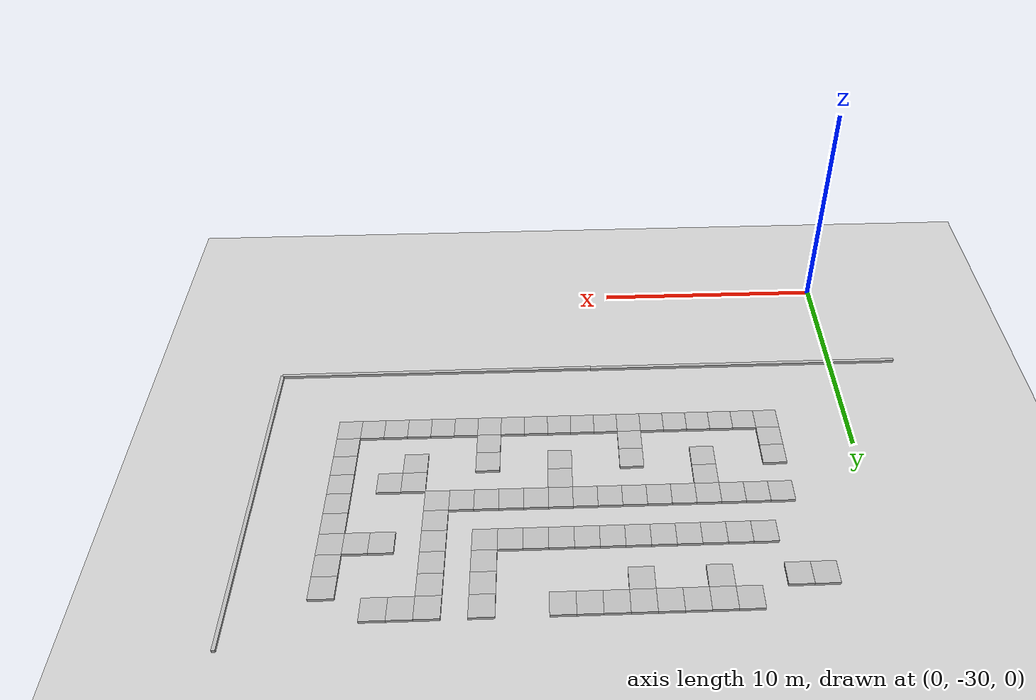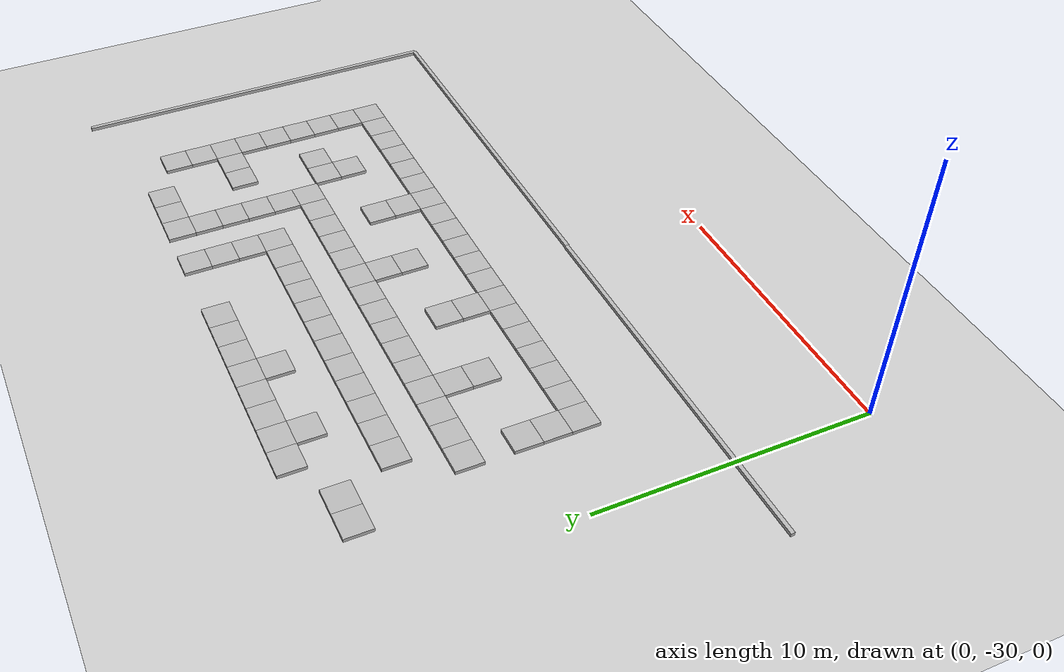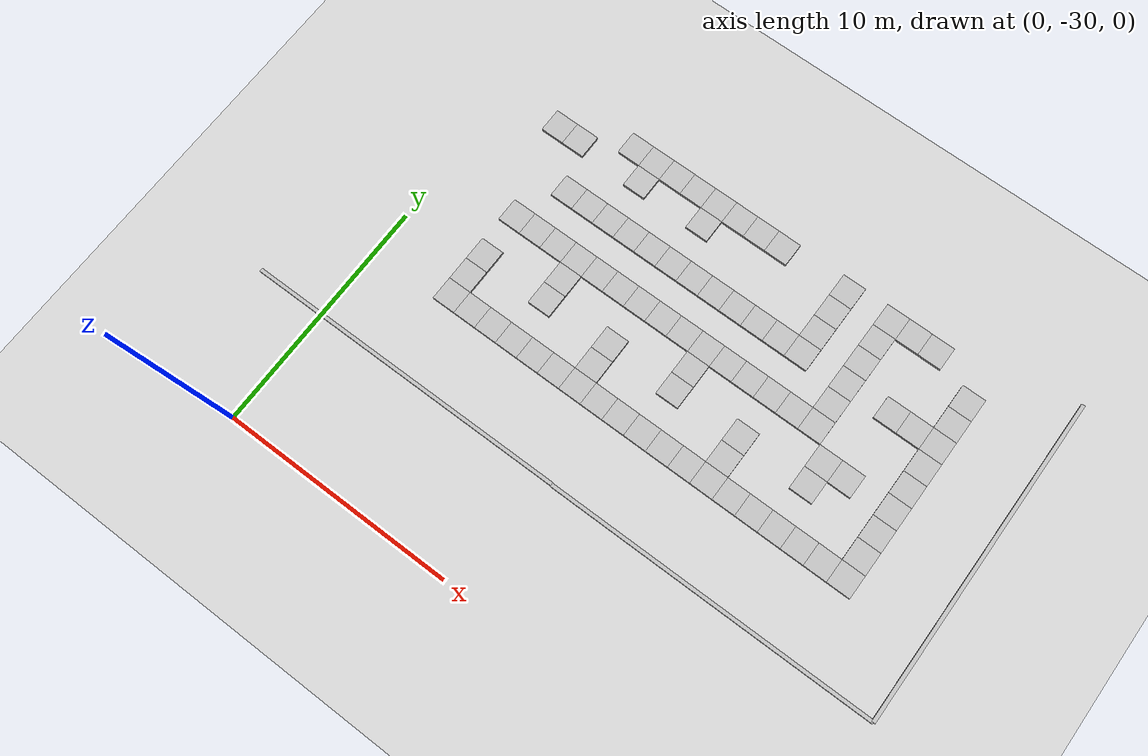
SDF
<sdf version="1.7">
 <world name="default">
  <model name="ground_plane">
   <static>1</static>
   <link name="link">
    <collision name="collision">
     <geometry><plane><normal>0 0 1</normal><size>100 100</size></plane></geometry>
     <surface>
      <contact><collide_bitmask>65535</collide_bitmask></contact>
      <friction><ode><mu>100</mu><mu2>50</mu2></ode></friction>
     </surface>
    </collision>
    <visual name="visual">
     <cast_shadows>0</cast_shadows>
     <geometry><plane><normal>0 0 1</normal><size>100 100</size></plane></geometry>
     <material>
      <script><uri>file://media/materials/scripts/gazebo.material</uri><name>Gazebo/Grey</name></script>
     </material>
    </visual>
   </link>
  </model>
  <model name="concrete_barrier_14m_0">
   <static>1</static>
   <link name="link">
    <collision name="concrete_barrier_14m_01">
     <pose>-0 0 0.3 0 -0 0</pose>
     <geometry><box><size>14 0.15 0.6</size></box></geometry>
    </collision>
    <visual name="concrete_barrier_14m_visual">
     <geometry><mesh><uri>model://concrete_barrier_14m/meshes/concrete_barrier_14m.dae</uri></mesh></geometry>
    </visual>
   </link>
   <pose>25 -18 0 0 -0 0</pose>
  </model>
  <model name="concrete_cube_1m_215">
   <static>1</static>
   <link name="link">
    <collision name="concrete_cube_1m">
     <pose>-0 0 0.3 0 -0 0</pose>
     <geometry><box><size>1 1 0.6</size></box></geometry>
    </collision>
    <visual name="concrete_cube_1m_visual">
     <geometry><mesh><uri>model://concrete_cube_1m/meshes/concrete_cube_1m.dae</uri></mesh></geometry>
    </visual>
   </link>
   <pose>2.5 -13.5 0 0 -0 0</pose>
  </model>
  <model name="concrete_cube_1m_219">
   <static>1</static>
   <link name="link">
    <collision name="concrete_cube_1m">
     <pose>-0 0 0.3 0 -0 0</pose>
     <geometry><box><size>1 1 0.6</size></box></geometry>
    </collision>
    <visual name="concrete_cube_1m_visual">
     <geometry><mesh><uri>model://concrete_cube_1m/meshes/concrete_cube_1m.dae</uri></mesh></geometry>
    </visual>
   </link>
   <pose>12.5 -12.5 0 0 -0 0</pose>
  </model>
  <model name="concrete_cube_1m_220">
   <static>1</static>
   <link name="link">
    <collision name="concrete_cube_1m">
     <pose>-0 0 0.3 0 -0 0</pose>
     <geometry><box><size>1 1 0.6</size></box></geometry>
    </collision>
    <visual name="concrete_cube_1m_visual">
     <geometry><mesh><uri>model://concrete_cube_1m/meshes/concrete_cube_1m.dae</uri></mesh></geometry>
    </visual>
   </link>
   <pose>11.5 -12.5 0 0 -0 0</pose>
  </model>
  <model name="concrete_cube_1m_221">
   <static>1</static>
   <link name="link">
    <collision name="concrete_cube_1m">
     <pose>-0 0 0.3 0 -0 0</pose>
     <geometry><box><size>1 1 0.6</size></box></geometry>
    </collision>
    <visual name="concrete_cube_1m_visual">
     <geometry><mesh><uri>model://concrete_cube_1m/meshes/concrete_cube_1m.dae</uri></mesh></geometry>
    </visual>
   </link>
   <pose>10.5 -12.5 0 0 -0 0</pose>
  </model>
  <model name="concrete_cube_1m_222">
   <static>1</static>
   <link name="link">
    <collision name="concrete_cube_1m">
     <pose>-0 0 0.3 0 -0 0</pose>
     <geometry><box><size>1 1 0.6</size></box></geometry>
    </collision>
    <visual name="concrete_cube_1m_visual">
     <geometry><mesh><uri>model://concrete_cube_1m/meshes/concrete_cube_1m.dae</uri></mesh></geometry>
    </visual>
   </link>
   <pose>9.5 -12.5 0 0 -0 0</pose>
  </model>
  <model name="concrete_cube_1m_223">
   <static>1</static>
   <link name="link">
    <collision name="concrete_cube_1m">
     <pose>-0 0 0.3 0 -0 0</pose>
     <geometry><box><size>1 1 0.6</size></box></geometry>
    </collision>
    <visual name="concrete_cube_1m_visual">
     <geometry><mesh><uri>model://concrete_cube_1m/meshes/concrete_cube_1m.dae</uri></mesh></geometry>
    </visual>
   </link>
   <pose>8.5 -12.5 0 0 -0 0</pose>
  </model>
  <model name="concrete_cube_1m_224">
   <static>1</static>
   <link name="link">
    <collision name="concrete_cube_1m">
     <pose>-0 0 0.3 0 -0 0</pose>
     <geometry><box><size>1 1 0.6</size></box></geometry>
    </collision>
    <visual name="concrete_cube_1m_visual">
     <geometry><mesh><uri>model://concrete_cube_1m/meshes/concrete_cube_1m.dae</uri></mesh></geometry>
    </visual>
   </link>
   <pose>7.5 -12.5 0 0 -0 0</pose>
  </model>
  <model name="concrete_cube_1m_225">
   <static>1</static>
   <link name="link">
    <collision name="concrete_cube_1m">
     <pose>-0 0 0.3 0 -0 0</pose>
     <geometry><box><size>1 1 0.6</size></box></geometry>
    </collision>
    <visual name="concrete_cube_1m_visual">
     <geometry><mesh><uri>model://concrete_cube_1m/meshes/concrete_cube_1m.dae</uri></mesh></geometry>
    </visual>
   </link>
   <pose>6.5 -12.5 0 0 -0 0</pose>
  </model>
  <model name="concrete_cube_1m_226">
   <static>1</static>
   <link name="link">
    <collision name="concrete_cube_1m">
     <pose>-0 0 0.3 0 -0 0</pose>
     <geometry><box><size>1 1 0.6</size></box></geometry>
    </collision>
    <visual name="concrete_cube_1m_visual">
     <geometry><mesh><uri>model://concrete_cube_1m/meshes/concrete_cube_1m.dae</uri></mesh></geometry>
    </visual>
   </link>
   <pose>5.5 -12.5 0 0 -0 0</pose>
  </model>
  <model name="concrete_cube_1m_241">
   <static>1</static>
   <link name="link">
    <collision name="concrete_cube_1m">
     <pose>-0 0 0.3 0 -0 0</pose>
     <geometry><box><size>1 1 0.6</size></box></geometry>
    </collision>
    <visual name="concrete_cube_1m_visual">
     <geometry><mesh><uri>model://concrete_cube_1m/meshes/concrete_cube_1m.dae</uri></mesh></geometry>
    </visual>
   </link>
   <pose>9.5 -13.5 0 0 -0 0</pose>
  </model>
  <model name="concrete_cube_1m_242">
   <static>1</static>
   <link name="link">
    <collision name="concrete_cube_1m">
     <pose>-0 0 0.3 0 -0 0</pose>
     <geometry><box><size>1 1 0.6</size></box></geometry>
    </collision>
    <visual name="concrete_cube_1m_visual">
     <geometry><mesh><uri>model://concrete_cube_1m/meshes/concrete_cube_1m.dae</uri></mesh></geometry>
    </visual>
   </link>
   <pose>6.5 -13.5 0 0 -0 0</pose>
  </model>
  <model name="concrete_cube_1m_243">
   <static>1</static>
   <link name="link">
    <collision name="concrete_cube_1m">
     <pose>-0 0 0.3 0 -0 0</pose>
     <geometry><box><size>1 1 0.6</size></box></geometry>
    </collision>
    <visual name="concrete_cube_1m_visual">
     <geometry><mesh><uri>model://concrete_cube_1m/meshes/concrete_cube_1m.dae</uri></mesh></geometry>
    </visual>
   </link>
   <pose>3.5 -13.5 0 0 -0 0</pose>
  </model>
  <model name="concrete_barrier_14m_4_clone_1">
   <static>1</static>
   <link name="link">
    <collision name="concrete_barrier_14m_01">
     <pose>-0 0 0.3 0 -0 0</pose>
     <geometry><box><size>14 0.15 0.6</size></box></geometry>
    </collision>
    <visual name="concrete_barrier_14m_visual">
     <geometry><mesh><uri>model://concrete_barrier_14m/meshes/concrete_barrier_14m.dae</uri></mesh></geometry>
    </visual>
   </link>
   <pose>18 -25 0 0 0 -1.56953</pose>
  </model>
  <model name="concrete_barrier_14m_4_clone_2">
   <static>1</static>
   <link name="link">
    <collision name="concrete_barrier_14m_01">
     <pose>-0 0 0.3 0 -0 0</pose>
     <geometry><box><size>14 0.15 0.6</size></box></geometry>
    </collision>
    <visual name="concrete_barrier_14m_visual">
     <geometry><mesh><uri>model://concrete_barrier_14m/meshes/concrete_barrier_14m.dae</uri></mesh></geometry>
    </visual>
   </link>
   <pose>4 -25 0 0 0 -1.56953</pose>
  </model>
  <model name="concrete_cube_1m_413">
   <static>1</static>
   <link name="link">
    <collision name="concrete_cube_1m">
     <pose>-0 0 0.3 0 -0 0</pose>
     <geometry><box><size>1 1 0.6</size></box></geometry>
    </collision>
    <visual name="concrete_cube_1m_visual">
     <geometry><mesh><uri>model://concrete_cube_1m/meshes/concrete_cube_1m.dae</uri></mesh></geometry>
    </visual>
   </link>
   <pose>3.5 -17.5 0 0 -0 0</pose>
  </model>
  <model name="concrete_cube_1m_414">
   <static>1</static>
   <link name="link">
    <collision name="concrete_cube_1m">
     <pose>-0 0 0.3 0 -0 0</pose>
     <geometry><box><size>1 1 0.6</size></box></geometry>
    </collision>
    <visual name="concrete_cube_1m_visual">
     <geometry><mesh><uri>model://concrete_cube_1m/meshes/concrete_cube_1m.dae</uri></mesh></geometry>
    </visual>
   </link>
   <pose>4.5 -17.5 0 0 -0 0</pose>
  </model>
  <model name="concrete_cube_1m_415">
   <static>1</static>
   <link name="link">
    <collision name="concrete_cube_1m">
     <pose>-0 0 0.3 0 -0 0</pose>
     <geometry><box><size>1 1 0.6</size></box></geometry>
    </collision>
    <visual name="concrete_cube_1m_visual">
     <geometry><mesh><uri>model://concrete_cube_1m/meshes/concrete_cube_1m.dae</uri></mesh></geometry>
    </visual>
   </link>
   <pose>5.5 -17.5 0 0 -0 0</pose>
  </model>
  <model name="concrete_cube_1m_416">
   <static>1</static>
   <link name="link">
    <collision name="concrete_cube_1m">
     <pose>-0 0 0.3 0 -0 0</pose>
     <geometry><box><size>1 1 0.6</size></box></geometry>
    </collision>
    <visual name="concrete_cube_1m_visual">
     <geometry><mesh><uri>model://concrete_cube_1m/meshes/concrete_cube_1m.dae</uri></mesh></geometry>
    </visual>
   </link>
   <pose>6.5 -17.5 0 0 -0 0</pose>
  </model>
  <model name="concrete_cube_1m_417">
   <static>1</static>
   <link name="link">
    <collision name="concrete_cube_1m">
     <pose>-0 0 0.3 0 -0 0</pose>
     <geometry><box><size>1 1 0.6</size></box></geometry>
    </collision>
    <visual name="concrete_cube_1m_visual">
     <geometry><mesh><uri>model://concrete_cube_1m/meshes/concrete_cube_1m.dae</uri></mesh></geometry>
    </visual>
   </link>
   <pose>7.5 -17.5 0 0 -0 0</pose>
  </model>
  <model name="concrete_cube_1m_418">
   <static>1</static>
   <link name="link">
    <collision name="concrete_cube_1m">
     <pose>-0 0 0.3 0 -0 0</pose>
     <geometry><box><size>1 1 0.6</size></box></geometry>
    </collision>
    <visual name="concrete_cube_1m_visual">
     <geometry><mesh><uri>model://concrete_cube_1m/meshes/concrete_cube_1m.dae</uri></mesh></geometry>
    </visual>
   </link>
   <pose>8.5 -17.5 0 0 -0 0</pose>
  </model>
  <model name="concrete_cube_1m_419">
   <static>1</static>
   <link name="link">
    <collision name="concrete_cube_1m">
     <pose>-0 0 0.3 0 -0 0</pose>
     <geometry><box><size>1 1 0.6</size></box></geometry>
    </collision>
    <visual name="concrete_cube_1m_visual">
     <geometry><mesh><uri>model://concrete_cube_1m/meshes/concrete_cube_1m.dae</uri></mesh></geometry>
    </visual>
   </link>
   <pose>9.5 -17.5 0 0 -0 0</pose>
  </model>
  <model name="concrete_cube_1m_420">
   <static>1</static>
   <link name="link">
    <collision name="concrete_cube_1m">
     <pose>-0 0 0.3 0 -0 0</pose>
     <geometry><box><size>1 1 0.6</size></box></geometry>
    </collision>
    <visual name="concrete_cube_1m_visual">
     <geometry><mesh><uri>model://concrete_cube_1m/meshes/concrete_cube_1m.dae</uri></mesh></geometry>
    </visual>
   </link>
   <pose>10.5 -17.5 0 0 -0 0</pose>
  </model>
  <model name="concrete_cube_1m_421">
   <static>1</static>
   <link name="link">
    <collision name="concrete_cube_1m">
     <pose>-0 0 0.3 0 -0 0</pose>
     <geometry><box><size>1 1 0.6</size></box></geometry>
    </collision>
    <visual name="concrete_cube_1m_visual">
     <geometry><mesh><uri>model://concrete_cube_1m/meshes/concrete_cube_1m.dae</uri></mesh></geometry>
    </visual>
   </link>
   <pose>11.5 -17.5 0 0 -0 0</pose>
  </model>
  <model name="concrete_cube_1m_422">
   <static>1</static>
   <link name="link">
    <collision name="concrete_cube_1m">
     <pose>-0 0 0.3 0 -0 0</pose>
     <geometry><box><size>1 1 0.6</size></box></geometry>
    </collision>
    <visual name="concrete_cube_1m_visual">
     <geometry><mesh><uri>model://concrete_cube_1m/meshes/concrete_cube_1m.dae</uri></mesh></geometry>
    </visual>
   </link>
   <pose>12.5 -17.5 0 0 -0 0</pose>
  </model>
  <model name="concrete_cube_1m_423">
   <static>1</static>
   <link name="link">
    <collision name="concrete_cube_1m">
     <pose>-0 0 0.3 0 -0 0</pose>
     <geometry><box><size>1 1 0.6</size></box></geometry>
    </collision>
    <visual name="concrete_cube_1m_visual">
     <geometry><mesh><uri>model://concrete_cube_1m/meshes/concrete_cube_1m.dae</uri></mesh></geometry>
    </visual>
   </link>
   <pose>13.5 -17.5 0 0 -0 0</pose>
  </model>
  <model name="concrete_cube_1m_424">
   <static>1</static>
   <link name="link">
    <collision name="concrete_cube_1m">
     <pose>-0 0 0.3 0 -0 0</pose>
     <geometry><box><size>1 1 0.6</size></box></geometry>
    </collision>
    <visual name="concrete_cube_1m_visual">
     <geometry><mesh><uri>model://concrete_cube_1m/meshes/concrete_cube_1m.dae</uri></mesh></geometry>
    </visual>
   </link>
   <pose>14.5 -17.5 0 0 -0 0</pose>
  </model>
  <model name="concrete_cube_1m_425">
   <static>1</static>
   <link name="link">
    <collision name="concrete_cube_1m">
     <pose>-0 0 0.3 0 -0 0</pose>
     <geometry><box><size>1 1 0.6</size></box></geometry>
    </collision>
    <visual name="concrete_cube_1m_visual">
     <geometry><mesh><uri>model://concrete_cube_1m/meshes/concrete_cube_1m.dae</uri></mesh></geometry>
    </visual>
   </link>
   <pose>15.5 -17.5 0 0 -0 0</pose>
  </model>
  <model name="concrete_cube_1m_426">
   <static>1</static>
   <link name="link">
    <collision name="concrete_cube_1m">
     <pose>-0 0 0.3 0 -0 0</pose>
     <geometry><box><size>1 1 0.6</size></box></geometry>
    </collision>
    <visual name="concrete_cube_1m_visual">
     <geometry><mesh><uri>model://concrete_cube_1m/meshes/concrete_cube_1m.dae</uri></mesh></geometry>
    </visual>
   </link>
   <pose>16.5 -17.5 0 0 -0 0</pose>
  </model>
  <model name="concrete_cube_1m_427">
   <static>1</static>
   <link name="link">
    <collision name="concrete_cube_1m">
     <pose>-0 0 0.3 0 -0 0</pose>
     <geometry><box><size>1 1 0.6</size></box></geometry>
    </collision>
    <visual name="concrete_cube_1m_visual">
     <geometry><mesh><uri>model://concrete_cube_1m/meshes/concrete_cube_1m.dae</uri></mesh></geometry>
    </visual>
   </link>
   <pose>17.5 -17.5 0 0 -0 0</pose>
  </model>
  <model name="concrete_cube_1m_428">
   <static>1</static>
   <link name="link">
    <collision name="concrete_cube_1m">
     <pose>-0 0 0.3 0 -0 0</pose>
     <geometry><box><size>1 1 0.6</size></box></geometry>
    </collision>
    <visual name="concrete_cube_1m_visual">
     <geometry><mesh><uri>model://concrete_cube_1m/meshes/concrete_cube_1m.dae</uri></mesh></geometry>
    </visual>
   </link>
   <pose>18.5 -18.5 0 0 -0 0</pose>
  </model>
  <model name="concrete_cube_1m_429">
   <static>1</static>
   <link name="link">
    <collision name="concrete_cube_1m">
     <pose>-0 0 0.3 0 -0 0</pose>
     <geometry><box><size>1 1 0.6</size></box></geometry>
    </collision>
    <visual name="concrete_cube_1m_visual">
     <geometry><mesh><uri>model://concrete_cube_1m/meshes/concrete_cube_1m.dae</uri></mesh></geometry>
    </visual>
   </link>
   <pose>17.5 -16.5 0 0 -0 0</pose>
  </model>
  <model name="concrete_cube_1m_430">
   <static>1</static>
   <link name="link">
    <collision name="concrete_cube_1m">
     <pose>-0 0 0.3 0 -0 0</pose>
     <geometry><box><size>1 1 0.6</size></box></geometry>
    </collision>
    <visual name="concrete_cube_1m_visual">
     <geometry><mesh><uri>model://concrete_cube_1m/meshes/concrete_cube_1m.dae</uri></mesh></geometry>
    </visual>
   </link>
   <pose>17.5 -15.5 0 0 -0 0</pose>
  </model>
  <model name="concrete_cube_1m_431">
   <static>1</static>
   <link name="link">
    <collision name="concrete_cube_1m">
     <pose>-0 0 0.3 0 -0 0</pose>
     <geometry><box><size>1 1 0.6</size></box></geometry>
    </collision>
    <visual name="concrete_cube_1m_visual">
     <geometry><mesh><uri>model://concrete_cube_1m/meshes/concrete_cube_1m.dae</uri></mesh></geometry>
    </visual>
   </link>
   <pose>17.5 -14.5 0 0 -0 0</pose>
  </model>
  <model name="concrete_cube_1m_432">
   <static>1</static>
   <link name="link">
    <collision name="concrete_cube_1m">
     <pose>-0 0 0.3 0 -0 0</pose>
     <geometry><box><size>1 1 0.6</size></box></geometry>
    </collision>
    <visual name="concrete_cube_1m_visual">
     <geometry><mesh><uri>model://concrete_cube_1m/meshes/concrete_cube_1m.dae</uri></mesh></geometry>
    </visual>
   </link>
   <pose>17.5 -13.5 0 0 -0 0</pose>
  </model>
  <model name="concrete_cube_1m_433">
   <static>1</static>
   <link name="link">
    <collision name="concrete_cube_1m">
     <pose>-0 0 0.3 0 -0 0</pose>
     <geometry><box><size>1 1 0.6</size></box></geometry>
    </collision>
    <visual name="concrete_cube_1m_visual">
     <geometry><mesh><uri>model://concrete_cube_1m/meshes/concrete_cube_1m.dae</uri></mesh></geometry>
    </visual>
   </link>
   <pose>17.5 -12.5 0 0 -0 0</pose>
  </model>
  <model name="concrete_cube_1m_444">
   <static>1</static>
   <link name="link">
    <collision name="concrete_cube_1m">
     <pose>-0 0 0.3 0 -0 0</pose>
     <geometry><box><size>1 1 0.6</size></box></geometry>
    </collision>
    <visual name="concrete_cube_1m_visual">
     <geometry><mesh><uri>model://concrete_cube_1m/meshes/concrete_cube_1m.dae</uri></mesh></geometry>
    </visual>
   </link>
   <pose>4.5 -15.5 0 0 -0 0</pose>
  </model>
  <model name="concrete_cube_1m_445">
   <static>1</static>
   <link name="link">
    <collision name="concrete_cube_1m">
     <pose>-0 0 0.3 0 -0 0</pose>
     <geometry><box><size>1 1 0.6</size></box></geometry>
    </collision>
    <visual name="concrete_cube_1m_visual">
     <geometry><mesh><uri>model://concrete_cube_1m/meshes/concrete_cube_1m.dae</uri></mesh></geometry>
    </visual>
   </link>
   <pose>5.5 -15.5 0 0 -0 0</pose>
  </model>
  <model name="concrete_cube_1m_446">
   <static>1</static>
   <link name="link">
    <collision name="concrete_cube_1m">
     <pose>-0 0 0.3 0 -0 0</pose>
     <geometry><box><size>1 1 0.6</size></box></geometry>
    </collision>
    <visual name="concrete_cube_1m_visual">
     <geometry><mesh><uri>model://concrete_cube_1m/meshes/concrete_cube_1m.dae</uri></mesh></geometry>
    </visual>
   </link>
   <pose>6.5 -15.5 0 0 -0 0</pose>
  </model>
  <model name="concrete_cube_1m_447">
   <static>1</static>
   <link name="link">
    <collision name="concrete_cube_1m">
     <pose>-0 0 0.3 0 -0 0</pose>
     <geometry><box><size>1 1 0.6</size></box></geometry>
    </collision>
    <visual name="concrete_cube_1m_visual">
     <geometry><mesh><uri>model://concrete_cube_1m/meshes/concrete_cube_1m.dae</uri></mesh></geometry>
    </visual>
   </link>
   <pose>7.5 -15.5 0 0 -0 0</pose>
  </model>
  <model name="concrete_cube_1m_448">
   <static>1</static>
   <link name="link">
    <collision name="concrete_cube_1m">
     <pose>-0 0 0.3 0 -0 0</pose>
     <geometry><box><size>1 1 0.6</size></box></geometry>
    </collision>
    <visual name="concrete_cube_1m_visual">
     <geometry><mesh><uri>model://concrete_cube_1m/meshes/concrete_cube_1m.dae</uri></mesh></geometry>
    </visual>
   </link>
   <pose>8.5 -15.5 0 0 -0 0</pose>
  </model>
  <model name="concrete_cube_1m_449">
   <static>1</static>
   <link name="link">
    <collision name="concrete_cube_1m">
     <pose>-0 0 0.3 0 -0 0</pose>
     <geometry><box><size>1 1 0.6</size></box></geometry>
    </collision>
    <visual name="concrete_cube_1m_visual">
     <geometry><mesh><uri>model://concrete_cube_1m/meshes/concrete_cube_1m.dae</uri></mesh></geometry>
    </visual>
   </link>
   <pose>9.5 -15.5 0 0 -0 0</pose>
  </model>
  <model name="concrete_cube_1m_450">
   <static>1</static>
   <link name="link">
    <collision name="concrete_cube_1m">
     <pose>-0 0 0.3 0 -0 0</pose>
     <geometry><box><size>1 1 0.6</size></box></geometry>
    </collision>
    <visual name="concrete_cube_1m_visual">
     <geometry><mesh><uri>model://concrete_cube_1m/meshes/concrete_cube_1m.dae</uri></mesh></geometry>
    </visual>
   </link>
   <pose>10.5 -15.5 0 0 -0 0</pose>
  </model>
  <model name="concrete_cube_1m_451">
   <static>1</static>
   <link name="link">
    <collision name="concrete_cube_1m">
     <pose>-0 0 0.3 0 -0 0</pose>
     <geometry><box><size>1 1 0.6</size></box></geometry>
    </collision>
    <visual name="concrete_cube_1m_visual">
     <geometry><mesh><uri>model://concrete_cube_1m/meshes/concrete_cube_1m.dae</uri></mesh></geometry>
    </visual>
   </link>
   <pose>11.5 -15.5 0 0 -0 0</pose>
  </model>
  <model name="concrete_cube_1m_452">
   <static>1</static>
   <link name="link">
    <collision name="concrete_cube_1m">
     <pose>-0 0 0.3 0 -0 0</pose>
     <geometry><box><size>1 1 0.6</size></box></geometry>
    </collision>
    <visual name="concrete_cube_1m_visual">
     <geometry><mesh><uri>model://concrete_cube_1m/meshes/concrete_cube_1m.dae</uri></mesh></geometry>
    </visual>
   </link>
   <pose>12.5 -15.5 0 0 -0 0</pose>
  </model>
  <model name="concrete_cube_1m_453">
   <static>1</static>
   <link name="link">
    <collision name="concrete_cube_1m">
     <pose>-0 0 0.3 0 -0 0</pose>
     <geometry><box><size>1 1 0.6</size></box></geometry>
    </collision>
    <visual name="concrete_cube_1m_visual">
     <geometry><mesh><uri>model://concrete_cube_1m/meshes/concrete_cube_1m.dae</uri></mesh></geometry>
    </visual>
   </link>
   <pose>13.5 -15.5 0 0 -0 0</pose>
  </model>
  <model name="concrete_cube_1m_454">
   <static>1</static>
   <link name="link">
    <collision name="concrete_cube_1m">
     <pose>-0 0 0.3 0 -0 0</pose>
     <geometry><box><size>1 1 0.6</size></box></geometry>
    </collision>
    <visual name="concrete_cube_1m_visual">
     <geometry><mesh><uri>model://concrete_cube_1m/meshes/concrete_cube_1m.dae</uri></mesh></geometry>
    </visual>
   </link>
   <pose>14.5 -15.5 0 0 -0 0</pose>
  </model>
  <model name="concrete_cube_1m_237">
   <static>1</static>
   <link name="link">
    <collision name="concrete_cube_1m">
     <pose>-0 0 0.3 0 -0 0</pose>
     <geometry><box><size>1 1 0.6</size></box></geometry>
    </collision>
    <visual name="concrete_cube_1m_visual">
     <geometry><mesh><uri>model://concrete_cube_1m/meshes/concrete_cube_1m.dae</uri></mesh></geometry>
    </visual>
   </link>
   <pose>15.5 -15.5 0 0 -0 0</pose>
  </model>
  <model name="concrete_cube_1m_455">
   <static>1</static>
   <link name="link">
    <collision name="concrete_cube_1m">
     <pose>-0 0 0.3 0 -0 0</pose>
     <geometry><box><size>1 1 0.6</size></box></geometry>
    </collision>
    <visual name="concrete_cube_1m_visual">
     <geometry><mesh><uri>model://concrete_cube_1m/meshes/concrete_cube_1m.dae</uri></mesh></geometry>
    </visual>
   </link>
   <pose>15.5 -13.5 0 0 -0 0</pose>
  </model>
  <model name="concrete_cube_1m_456">
   <static>1</static>
   <link name="link">
    <collision name="concrete_cube_1m">
     <pose>-0 0 0.3 0 -0 0</pose>
     <geometry><box><size>1 1 0.6</size></box></geometry>
    </collision>
    <visual name="concrete_cube_1m_visual">
     <geometry><mesh><uri>model://concrete_cube_1m/meshes/concrete_cube_1m.dae</uri></mesh></geometry>
    </visual>
   </link>
   <pose>15.5 -14.5 0 0 -0 0</pose>
  </model>
  <model name="concrete_cube_1m_457">
   <static>1</static>
   <link name="link">
    <collision name="concrete_cube_1m">
     <pose>-0 0 0.3 0 -0 0</pose>
     <geometry><box><size>1 1 0.6</size></box></geometry>
    </collision>
    <visual name="concrete_cube_1m_visual">
     <geometry><mesh><uri>model://concrete_cube_1m/meshes/concrete_cube_1m.dae</uri></mesh></geometry>
    </visual>
   </link>
   <pose>15.5 -12.5 0 0 -0 0</pose>
  </model>
  <model name="concrete_cube_1m_467">
   <static>1</static>
   <link name="link">
    <collision name="concrete_cube_1m">
     <pose>-0 0 0.3 0 -0 0</pose>
     <geometry><box><size>1 1 0.6</size></box></geometry>
    </collision>
    <visual name="concrete_cube_1m_visual">
     <geometry><mesh><uri>model://concrete_cube_1m/meshes/concrete_cube_1m.dae</uri></mesh></geometry>
    </visual>
   </link>
   <pose>15.5 -19.5 0 0 -0 0</pose>
  </model>
  <model name="concrete_cube_1m_468">
   <static>1</static>
   <link name="link">
    <collision name="concrete_cube_1m">
     <pose>-0 0 0.3 0 -0 0</pose>
     <geometry><box><size>1 1 0.6</size></box></geometry>
    </collision>
    <visual name="concrete_cube_1m_visual">
     <geometry><mesh><uri>model://concrete_cube_1m/meshes/concrete_cube_1m.dae</uri></mesh></geometry>
    </visual>
   </link>
   <pose>12.5 -18.5 0 0 -0 0</pose>
  </model>
  <model name="concrete_cube_1m_469">
   <static>1</static>
   <link name="link">
    <collision name="concrete_cube_1m">
     <pose>-0 0 0.3 0 -0 0</pose>
     <geometry><box><size>1 1 0.6</size></box></geometry>
    </collision>
    <visual name="concrete_cube_1m_visual">
     <geometry><mesh><uri>model://concrete_cube_1m/meshes/concrete_cube_1m.dae</uri></mesh></geometry>
    </visual>
   </link>
   <pose>9.5 -19.5 0 0 -0 0</pose>
  </model>
  <model name="concrete_cube_1m_470">
   <static>1</static>
   <link name="link">
    <collision name="concrete_cube_1m">
     <pose>-0 0 0.3 0 -0 0</pose>
     <geometry><box><size>1 1 0.6</size></box></geometry>
    </collision>
    <visual name="concrete_cube_1m_visual">
     <geometry><mesh><uri>model://concrete_cube_1m/meshes/concrete_cube_1m.dae</uri></mesh></geometry>
    </visual>
   </link>
   <pose>6.5 -18.5 0 0 -0 0</pose>
  </model>
  <model name="concrete_cube_1m_471">
   <static>1</static>
   <link name="link">
    <collision name="concrete_cube_1m">
     <pose>-0 0 0.3 0 -0 0</pose>
     <geometry><box><size>1 1 0.6</size></box></geometry>
    </collision>
    <visual name="concrete_cube_1m_visual">
     <geometry><mesh><uri>model://concrete_cube_1m/meshes/concrete_cube_1m.dae</uri></mesh></geometry>
    </visual>
   </link>
   <pose>3.5 -19.5 0 0 -0 0</pose>
  </model>
  <model name="concrete_cube_1m_472">
   <static>1</static>
   <link name="link">
    <collision name="concrete_cube_1m">
     <pose>-0 0 0.3 0 -0 0</pose>
     <geometry><box><size>1 1 0.6</size></box></geometry>
    </collision>
    <visual name="concrete_cube_1m_visual">
     <geometry><mesh><uri>model://concrete_cube_1m/meshes/concrete_cube_1m.dae</uri></mesh></geometry>
    </visual>
   </link>
   <pose>19.5 -15.5 0 0 -0 0</pose>
  </model>
  <model name="concrete_cube_1m_473">
   <static>1</static>
   <link name="link">
    <collision name="concrete_cube_1m">
     <pose>-0 0 0.3 0 -0 0</pose>
     <geometry><box><size>1 1 0.6</size></box></geometry>
    </collision>
    <visual name="concrete_cube_1m_visual">
     <geometry><mesh><uri>model://concrete_cube_1m/meshes/concrete_cube_1m.dae</uri></mesh></geometry>
    </visual>
   </link>
   <pose>18.5 -12.5 0 0 -0 0</pose>
  </model>
  <model name="concrete_cube_1m_690">
   <static>1</static>
   <link name="link">
    <collision name="concrete_cube_1m">
     <pose>-0 0 0.3 0 -0 0</pose>
     <geometry><box><size>1 1 0.6</size></box></geometry>
    </collision>
    <visual name="concrete_cube_1m_visual">
     <geometry><mesh><uri>model://concrete_cube_1m/meshes/concrete_cube_1m.dae</uri></mesh></geometry>
    </visual>
   </link>
   <pose>19.5 -12.5 0 0 -0 0</pose>
  </model>
  <model name="concrete_cube_1m_691">
   <static>1</static>
   <link name="link">
    <collision name="concrete_cube_1m">
     <pose>-0 0 0.3 0 -0 0</pose>
     <geometry><box><size>1 1 0.6</size></box></geometry>
    </collision>
    <visual name="concrete_cube_1m_visual">
     <geometry><mesh><uri>model://concrete_cube_1m/meshes/concrete_cube_1m.dae</uri></mesh></geometry>
    </visual>
   </link>
   <pose>20.5 -15.5 0 0 -0 0</pose>
  </model>
  <model name="concrete_cube_1m_692">
   <static>1</static>
   <link name="link">
    <collision name="concrete_cube_1m">
     <pose>-0 0 0.3 0 -0 0</pose>
     <geometry><box><size>1 1 0.6</size></box></geometry>
    </collision>
    <visual name="concrete_cube_1m_visual">
     <geometry><mesh><uri>model://concrete_cube_1m/meshes/concrete_cube_1m.dae</uri></mesh></geometry>
    </visual>
   </link>
   <pose>19.5 -18.5 0 0 -0 0</pose>
  </model>
  <model name="concrete_cube_1m_704">
   <static>1</static>
   <link name="link">
    <collision name="concrete_cube_1m">
     <pose>-0 0 0.3 0 -0 0</pose>
     <geometry><box><size>1 1 0.6</size></box></geometry>
    </collision>
    <visual name="concrete_cube_1m_visual">
     <geometry><mesh><uri>model://concrete_cube_1m/meshes/concrete_cube_1m.dae</uri></mesh></geometry>
    </visual>
   </link>
   <pose>21.5 -13.5 0 0 -0 0</pose>
  </model>
  <model name="concrete_cube_1m_705">
   <static>1</static>
   <link name="link">
    <collision name="concrete_cube_1m">
     <pose>-0 0 0.3 0 -0 0</pose>
     <geometry><box><size>1 1 0.6</size></box></geometry>
    </collision>
    <visual name="concrete_cube_1m_visual">
     <geometry><mesh><uri>model://concrete_cube_1m/meshes/concrete_cube_1m.dae</uri></mesh></geometry>
    </visual>
   </link>
   <pose>21.5 -14.5 0 0 -0 0</pose>
  </model>
  <model name="concrete_cube_1m_706">
   <static>1</static>
   <link name="link">
    <collision name="concrete_cube_1m">
     <pose>-0 0 0.3 0 -0 0</pose>
     <geometry><box><size>1 1 0.6</size></box></geometry>
    </collision>
    <visual name="concrete_cube_1m_visual">
     <geometry><mesh><uri>model://concrete_cube_1m/meshes/concrete_cube_1m.dae</uri></mesh></geometry>
    </visual>
   </link>
   <pose>21.5 -15.5 0 0 -0 0</pose>
  </model>
  <model name="concrete_cube_1m_707">
   <static>1</static>
   <link name="link">
    <collision name="concrete_cube_1m">
     <pose>-0 0 0.3 0 -0 0</pose>
     <geometry><box><size>1 1 0.6</size></box></geometry>
    </collision>
    <visual name="concrete_cube_1m_visual">
     <geometry><mesh><uri>model://concrete_cube_1m/meshes/concrete_cube_1m.dae</uri></mesh></geometry>
    </visual>
   </link>
   <pose>21.5 -16.5 0 0 -0 0</pose>
  </model>
  <model name="concrete_cube_1m_708">
   <static>1</static>
   <link name="link">
    <collision name="concrete_cube_1m">
     <pose>-0 0 0.3 0 -0 0</pose>
     <geometry><box><size>1 1 0.6</size></box></geometry>
    </collision>
    <visual name="concrete_cube_1m_visual">
     <geometry><mesh><uri>model://concrete_cube_1m/meshes/concrete_cube_1m.dae</uri></mesh></geometry>
    </visual>
   </link>
   <pose>21.5 -17.5 0 0 -0 0</pose>
  </model>
  <model name="concrete_cube_1m_709">
   <static>1</static>
   <link name="link">
    <collision name="concrete_cube_1m">
     <pose>-0 0 0.3 0 -0 0</pose>
     <geometry><box><size>1 1 0.6</size></box></geometry>
    </collision>
    <visual name="concrete_cube_1m_visual">
     <geometry><mesh><uri>model://concrete_cube_1m/meshes/concrete_cube_1m.dae</uri></mesh></geometry>
    </visual>
   </link>
   <pose>21.5 -18.5 0 0 -0 0</pose>
  </model>
  <model name="concrete_cube_1m_710">
   <static>1</static>
   <link name="link">
    <collision name="concrete_cube_1m">
     <pose>-0 0 0.3 0 -0 0</pose>
     <geometry><box><size>1 1 0.6</size></box></geometry>
    </collision>
    <visual name="concrete_cube_1m_visual">
     <geometry><mesh><uri>model://concrete_cube_1m/meshes/concrete_cube_1m.dae</uri></mesh></geometry>
    </visual>
   </link>
   <pose>15.5 -20.5 0 0 -0 0</pose>
  </model>
  <model name="concrete_cube_1m_711">
   <static>1</static>
   <link name="link">
    <collision name="concrete_cube_1m">
     <pose>-0 0 0.3 0 -0 0</pose>
     <geometry><box><size>1 1 0.6</size></box></geometry>
    </collision>
    <visual name="concrete_cube_1m_visual">
     <geometry><mesh><uri>model://concrete_cube_1m/meshes/concrete_cube_1m.dae</uri></mesh></geometry>
    </visual>
   </link>
   <pose>15.5 -21.5 0 0 -0 0</pose>
  </model>
  <model name="concrete_cube_1m_712">
   <static>1</static>
   <link name="link">
    <collision name="concrete_cube_1m">
     <pose>-0 0 0.3 0 -0 0</pose>
     <geometry><box><size>1 1 0.6</size></box></geometry>
    </collision>
    <visual name="concrete_cube_1m_visual">
     <geometry><mesh><uri>model://concrete_cube_1m/meshes/concrete_cube_1m.dae</uri></mesh></geometry>
    </visual>
   </link>
   <pose>16.5 -21.5 0 0 -0 0</pose>
  </model>
  <model name="concrete_cube_1m_713">
   <static>1</static>
   <link name="link">
    <collision name="concrete_cube_1m">
     <pose>-0 0 0.3 0 -0 0</pose>
     <geometry><box><size>1 1 0.6</size></box></geometry>
    </collision>
    <visual name="concrete_cube_1m_visual">
     <geometry><mesh><uri>model://concrete_cube_1m/meshes/concrete_cube_1m.dae</uri></mesh></geometry>
    </visual>
   </link>
   <pose>17.5 -21.5 0 0 -0 0</pose>
  </model>
  <model name="concrete_cube_1m_714">
   <static>1</static>
   <link name="link">
    <collision name="concrete_cube_1m">
     <pose>-0 0 0.3 0 -0 0</pose>
     <geometry><box><size>1 1 0.6</size></box></geometry>
    </collision>
    <visual name="concrete_cube_1m_visual">
     <geometry><mesh><uri>model://concrete_cube_1m/meshes/concrete_cube_1m.dae</uri></mesh></geometry>
    </visual>
   </link>
   <pose>18.5 -21.5 0 0 -0 0</pose>
  </model>
  <model name="concrete_cube_1m_715">
   <static>1</static>
   <link name="link">
    <collision name="concrete_cube_1m">
     <pose>-0 0 0.3 0 -0 0</pose>
     <geometry><box><size>1 1 0.6</size></box></geometry>
    </collision>
    <visual name="concrete_cube_1m_visual">
     <geometry><mesh><uri>model://concrete_cube_1m/meshes/concrete_cube_1m.dae</uri></mesh></geometry>
    </visual>
   </link>
   <pose>19.5 -21.5 0 0 -0 0</pose>
  </model>
  <model name="concrete_cube_1m_716">
   <static>1</static>
   <link name="link">
    <collision name="concrete_cube_1m">
     <pose>-0 0 0.3 0 -0 0</pose>
     <geometry><box><size>1 1 0.6</size></box></geometry>
    </collision>
    <visual name="concrete_cube_1m_visual">
     <geometry><mesh><uri>model://concrete_cube_1m/meshes/concrete_cube_1m.dae</uri></mesh></geometry>
    </visual>
   </link>
   <pose>20.5 -21.5 0 0 -0 0</pose>
  </model>
  <model name="concrete_cube_1m_717">
   <static>1</static>
   <link name="link">
    <collision name="concrete_cube_1m">
     <pose>-0 0 0.3 0 -0 0</pose>
     <geometry><box><size>1 1 0.6</size></box></geometry>
    </collision>
    <visual name="concrete_cube_1m_visual">
     <geometry><mesh><uri>model://concrete_cube_1m/meshes/concrete_cube_1m.dae</uri></mesh></geometry>
    </visual>
   </link>
   <pose>21.5 -20.5 0 0 -0 0</pose>
  </model>
  <model name="concrete_cube_1m_718">
   <static>1</static>
   <link name="link">
    <collision name="concrete_cube_1m">
     <pose>-0 0 0.3 0 -0 0</pose>
     <geometry><box><size>1 1 0.6</size></box></geometry>
    </collision>
    <visual name="concrete_cube_1m_visual">
     <geometry><mesh><uri>model://concrete_cube_1m/meshes/concrete_cube_1m.dae</uri></mesh></geometry>
    </visual>
   </link>
   <pose>21.5 -21.5 0 0 -0 0</pose>
  </model>
  <model name="concrete_cube_1m_719">
   <static>1</static>
   <link name="link">
    <collision name="concrete_cube_1m">
     <pose>-0 0 0.3 0 -0 0</pose>
     <geometry><box><size>1 1 0.6</size></box></geometry>
    </collision>
    <visual name="concrete_cube_1m_visual">
     <geometry><mesh><uri>model://concrete_cube_1m/meshes/concrete_cube_1m.dae</uri></mesh></geometry>
    </visual>
   </link>
   <pose>21.5 -19.5 0 0 -0 0</pose>
  </model>
  <model name="concrete_cube_1m_720">
   <static>1</static>
   <link name="link">
    <collision name="concrete_cube_1m">
     <pose>-0 0 0.3 0 -0 0</pose>
     <geometry><box><size>1 1 0.6</size></box></geometry>
    </collision>
    <visual name="concrete_cube_1m_visual">
     <geometry><mesh><uri>model://concrete_cube_1m/meshes/concrete_cube_1m.dae</uri></mesh></geometry>
    </visual>
   </link>
   <pose>18.5 -19.5 0 0 -0 0</pose>
  </model>
  <model name="concrete_cube_1m_721">
   <static>1</static>
   <link name="link">
    <collision name="concrete_cube_1m">
     <pose>-0 0 0.3 0 -0 0</pose>
     <geometry><box><size>1 1 0.6</size></box></geometry>
    </collision>
    <visual name="concrete_cube_1m_visual">
     <geometry><mesh><uri>model://concrete_cube_1m/meshes/concrete_cube_1m.dae</uri></mesh></geometry>
    </visual>
   </link>
   <pose>14.5 -21.5 0 0 -0 0</pose>
  </model>
  <model name="concrete_cube_1m_722">
   <static>1</static>
   <link name="link">
    <collision name="concrete_cube_1m">
     <pose>-0 0 0.3 0 -0 0</pose>
     <geometry><box><size>1 1 0.6</size></box></geometry>
    </collision>
    <visual name="concrete_cube_1m_visual">
     <geometry><mesh><uri>model://concrete_cube_1m/meshes/concrete_cube_1m.dae</uri></mesh></geometry>
    </visual>
   </link>
   <pose>13.4995 -21.5022 0 0 -0 0</pose>
  </model>
  <model name="concrete_cube_1m_723">
   <static>1</static>
   <link name="link">
    <collision name="concrete_cube_1m">
     <pose>-0 0 0.3 0 -0 0</pose>
     <geometry><box><size>1 1 0.6</size></box></geometry>
    </collision>
    <visual name="concrete_cube_1m_visual">
     <geometry><mesh><uri>model://concrete_cube_1m/meshes/concrete_cube_1m.dae</uri></mesh></geometry>
    </visual>
   </link>
   <pose>12.5 -21.5 0 0 -0 0</pose>
  </model>
  <model name="concrete_cube_1m_724">
   <static>1</static>
   <link name="link">
    <collision name="concrete_cube_1m">
     <pose>-0 0 0.3 0 -0 0</pose>
     <geometry><box><size>1 1 0.6</size></box></geometry>
    </collision>
    <visual name="concrete_cube_1m_visual">
     <geometry><mesh><uri>model://concrete_cube_1m/meshes/concrete_cube_1m.dae</uri></mesh></geometry>
    </visual>
   </link>
   <pose>12.5 -19.5 0 0 -0 0</pose>
  </model>
  <model name="concrete_cube_1m_725">
   <static>1</static>
   <link name="link">
    <collision name="concrete_cube_1m">
     <pose>-0 0 0.3 0 -0 0</pose>
     <geometry><box><size>1 1 0.6</size></box></geometry>
    </collision>
    <visual name="concrete_cube_1m_visual">
     <geometry><mesh><uri>model://concrete_cube_1m/meshes/concrete_cube_1m.dae</uri></mesh></geometry>
    </visual>
   </link>
   <pose>11.5 -21.5 0 0 -0 0</pose>
  </model>
  <model name="concrete_cube_1m_726">
   <static>1</static>
   <link name="link">
    <collision name="concrete_cube_1m">
     <pose>-0 0 0.3 0 -0 0</pose>
     <geometry><box><size>1 1 0.6</size></box></geometry>
    </collision>
    <visual name="concrete_cube_1m_visual">
     <geometry><mesh><uri>model://concrete_cube_1m/meshes/concrete_cube_1m.dae</uri></mesh></geometry>
    </visual>
   </link>
   <pose>10.5 -21.5 0 0 -0 0</pose>
  </model>
  <model name="concrete_cube_1m_727">
   <static>1</static>
   <link name="link">
    <collision name="concrete_cube_1m">
     <pose>-0 0 0.3 0 -0 0</pose>
     <geometry><box><size>1 1 0.6</size></box></geometry>
    </collision>
    <visual name="concrete_cube_1m_visual">
     <geometry><mesh><uri>model://concrete_cube_1m/meshes/concrete_cube_1m.dae</uri></mesh></geometry>
    </visual>
   </link>
   <pose>9.5 -20.5 0 0 -0 0</pose>
  </model>
  <model name="concrete_cube_1m_728">
   <static>1</static>
   <link name="link">
    <collision name="concrete_cube_1m">
     <pose>-0 0 0.3 0 -0 0</pose>
     <geometry><box><size>1 1 0.6</size></box></geometry>
    </collision>
    <visual name="concrete_cube_1m_visual">
     <geometry><mesh><uri>model://concrete_cube_1m/meshes/concrete_cube_1m.dae</uri></mesh></geometry>
    </visual>
   </link>
   <pose>6.5 -19.5 0 0 -0 0</pose>
  </model>
  <model name="concrete_cube_1m_729">
   <static>1</static>
   <link name="link">
    <collision name="concrete_cube_1m">
     <pose>-0 0 0.3 0 -0 0</pose>
     <geometry><box><size>1 1 0.6</size></box></geometry>
    </collision>
    <visual name="concrete_cube_1m_visual">
     <geometry><mesh><uri>model://concrete_cube_1m/meshes/concrete_cube_1m.dae</uri></mesh></geometry>
    </visual>
   </link>
   <pose>3.5 -20.5 0 0 -0 0</pose>
  </model>
  <model name="concrete_cube_1m_730">
   <static>1</static>
   <link name="link">
    <collision name="concrete_cube_1m">
     <pose>-0 0 0.3 0 -0 0</pose>
     <geometry><box><size>1 1 0.6</size></box></geometry>
    </collision>
    <visual name="concrete_cube_1m_visual">
     <geometry><mesh><uri>model://concrete_cube_1m/meshes/concrete_cube_1m.dae</uri></mesh></geometry>
    </visual>
   </link>
   <pose>9.5 -21.5 0 0 -0 0</pose>
  </model>
  <model name="concrete_cube_1m_731">
   <static>1</static>
   <link name="link">
    <collision name="concrete_cube_1m">
     <pose>-0 0 0.3 0 -0 0</pose>
     <geometry><box><size>1 1 0.6</size></box></geometry>
    </collision>
    <visual name="concrete_cube_1m_visual">
     <geometry><mesh><uri>model://concrete_cube_1m/meshes/concrete_cube_1m.dae</uri></mesh></geometry>
    </visual>
   </link>
   <pose>8.5 -21.5 0 0 -0 0</pose>
  </model>
  <model name="concrete_cube_1m_732">
   <static>1</static>
   <link name="link">
    <collision name="concrete_cube_1m">
     <pose>-0 0 0.3 0 -0 0</pose>
     <geometry><box><size>1 1 0.6</size></box></geometry>
    </collision>
    <visual name="concrete_cube_1m_visual">
     <geometry><mesh><uri>model://concrete_cube_1m/meshes/concrete_cube_1m.dae</uri></mesh></geometry>
    </visual>
   </link>
   <pose>7.5 -21.5 0 0 -0 0</pose>
  </model>
  <model name="concrete_cube_1m_733">
   <static>1</static>
   <link name="link">
    <collision name="concrete_cube_1m">
     <pose>-0 0 0.3 0 -0 0</pose>
     <geometry><box><size>1 1 0.6</size></box></geometry>
    </collision>
    <visual name="concrete_cube_1m_visual">
     <geometry><mesh><uri>model://concrete_cube_1m/meshes/concrete_cube_1m.dae</uri></mesh></geometry>
    </visual>
   </link>
   <pose>6.5 -21.5 0 0 -0 0</pose>
  </model>
  <model name="concrete_cube_1m_734">
   <static>1</static>
   <link name="link">
    <collision name="concrete_cube_1m">
     <pose>-0 0 0.3 0 -0 0</pose>
     <geometry><box><size>1 1 0.6</size></box></geometry>
    </collision>
    <visual name="concrete_cube_1m_visual">
     <geometry><mesh><uri>model://concrete_cube_1m/meshes/concrete_cube_1m.dae</uri></mesh></geometry>
    </visual>
   </link>
   <pose>5.5 -21.5 0 0 -0 0</pose>
  </model>
  <model name="concrete_cube_1m_735">
   <static>1</static>
   <link name="link">
    <collision name="concrete_cube_1m">
     <pose>-0 0 0.3 0 -0 0</pose>
     <geometry><box><size>1 1 0.6</size></box></geometry>
    </collision>
    <visual name="concrete_cube_1m_visual">
     <geometry><mesh><uri>model://concrete_cube_1m/meshes/concrete_cube_1m.dae</uri></mesh></geometry>
    </visual>
   </link>
   <pose>4.5 -21.5 0 0 -0 0</pose>
  </model>
  <model name="concrete_cube_1m_736">
   <static>1</static>
   <link name="link">
    <collision name="concrete_cube_1m">
     <pose>-0 0 0.3 0 -0 0</pose>
     <geometry><box><size>1 1 0.6</size></box></geometry>
    </collision>
    <visual name="concrete_cube_1m_visual">
     <geometry><mesh><uri>model://concrete_cube_1m/meshes/concrete_cube_1m.dae</uri></mesh></geometry>
    </visual>
   </link>
   <pose>3.5 -21.5 0 0 -0 0</pose>
  </model>
 </world>
</sdf>
